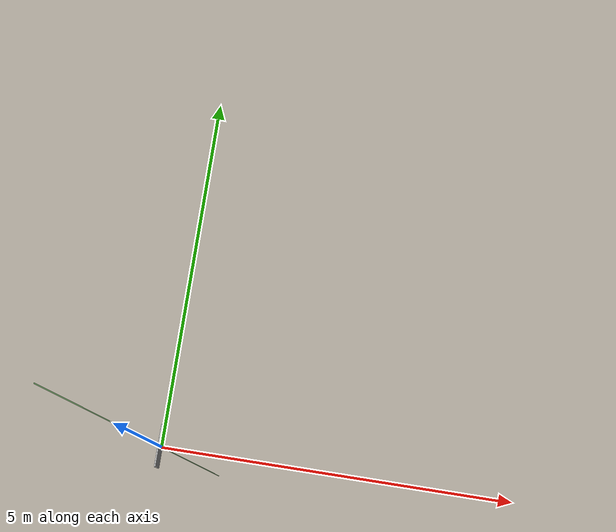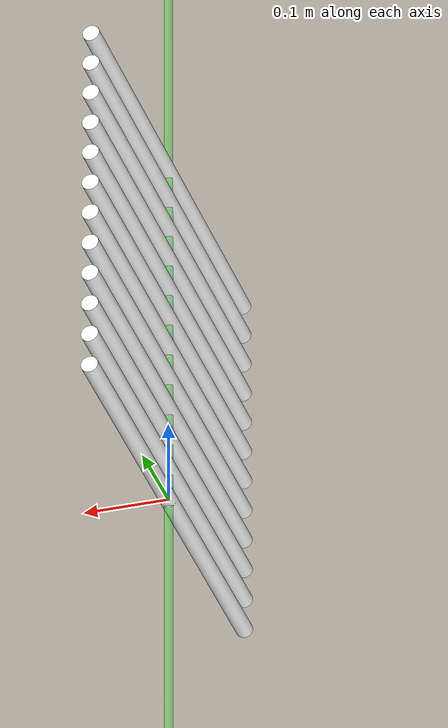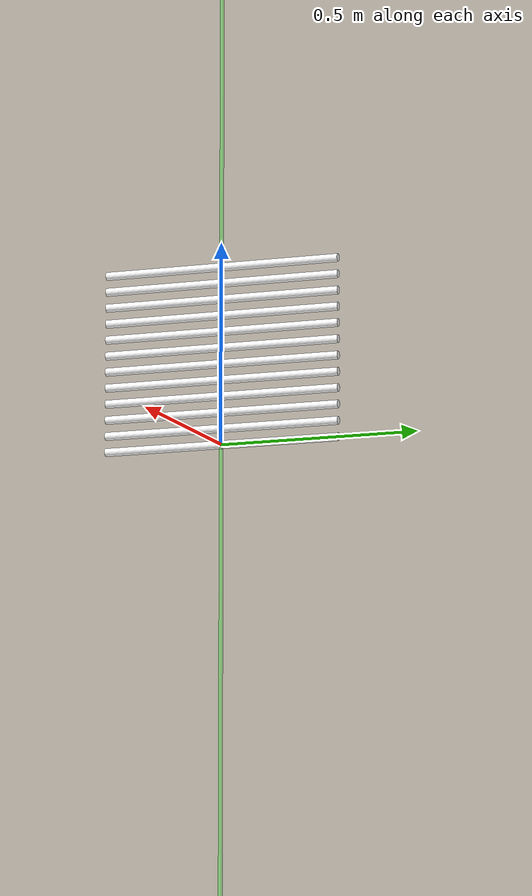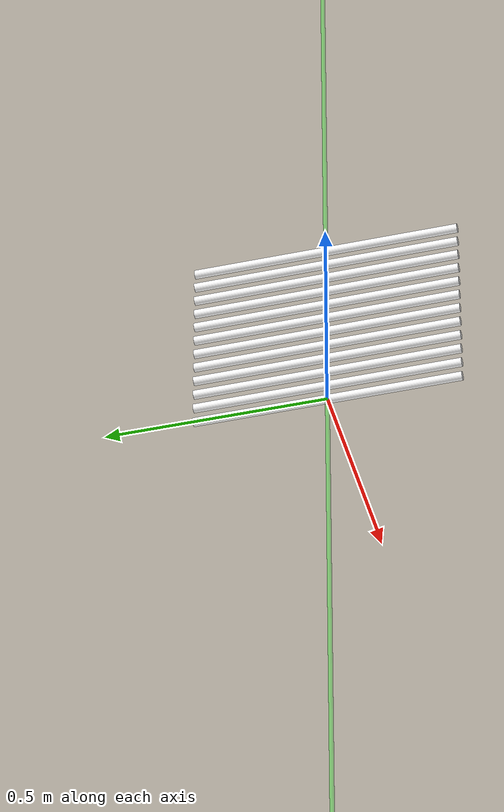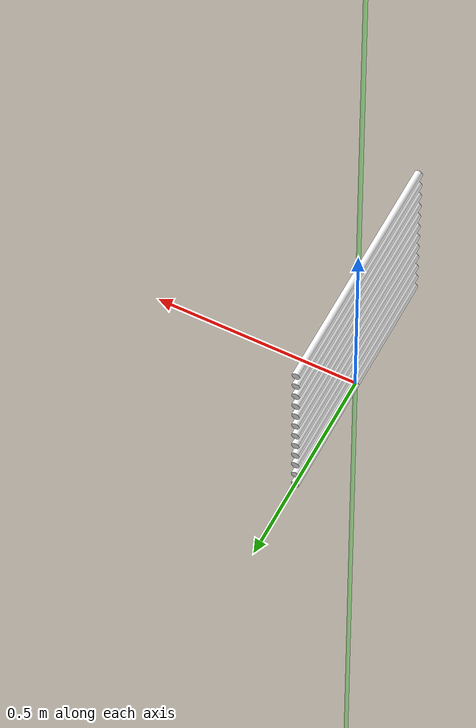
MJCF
<mujoco model="cloth_hand">
    <worldbody>
        <body name="cloth_base" pos="0 0 0">
            <site name="ft_frame" pos="0 0 0" size="0.01 0.01 0.01" rgba="1 0 0 1" type="sphere" group="1"/>
            <inertial pos="0 0 0" mass="3e-1" diaginertia="1e-2 1e-2 1e-2" />
            <body name="eef" pos="0 0 0" quat="0.707105 0 0 -0.707105">
                <site name="grip_site" pos="0 0 0" size="0.01 0.01 0.01" rgba="1 0 0 0.5" type="sphere" group="1"/>
                <site name="ee_x" pos="0.1 0 0" size="0.005 .1"  quat="0.707105  0 0.707108 0 " rgba="1 0 0 0" type="cylinder" group="1"/>
                <site name="ee_y" pos="0 0.1 0" size="0.005 .1" quat="0.707105 0.707108 0 0" rgba="0 1 0 0" type="cylinder" group="1"/>
                <site name="ee_z" pos="0 0 0.1" size="0.005 .1" quat="1 0 0 0" rgba="0 0 1 0" type="cylinder" group="1"/>
                <site name="grip_site_cylinder" pos="0 0 0" size="0.005 10" rgba="0 1 0 0.3" type="cylinder" group="1"/>
            </body>

        	<body name="object" quat="0.707 0.707 0 0">
        		<inertial pos="0.022 0 0" mass="0.01" diaginertia="7.89997e-07 7.89997e-07 8e-08" />
        		<geom size="0.01 0.3" pos="0 0 0" type="cylinder" rgba="1 1 1 1" group="0"/>
        		<joint name="joint0" type="hinge" pos="0 0.04 0" range="-45 45" axis="0 0 1"/>
		    	<body name="object3">
					<geom size="0.01 0.3" pos="0 0.04 0" type="cylinder" rgba="1 1 1 1" group="0"/>
					<joint name="joint1" type="hinge" pos="0 0.08 0" range="-45 45" axis="0 0 1"/>
					<body name="object4">
						<geom size="0.01 0.3" pos="0 0.08 0" type="cylinder" rgba="1 1 1 1" group="0"/>
						<joint name="joint2" type="hinge" pos="0 0.12 0" range="-45 45" axis="0 0 1"/>
						<body name="object5">
							<geom size="0.01 0.3" pos="0 0.12 0" type="cylinder" rgba="1 1 1 1" group="0"/>
							<joint name="joint3" type="hinge" pos="0 0.16 0" range="-45 45" axis="0 0 1"/>
							<body name="object6">
								<geom size="0.01 0.3" pos="0 0.16 0" type="cylinder" rgba="1 1 1 1" group="0"/>
								<joint name="joint4" type="hinge" pos="0 0.20 0" range="-45 45" axis="0 0 1"/>
								<body name="object7">
									<geom size="0.01 0.3" pos="0 0.20 0" type="cylinder" rgba="1 1 1 1" group="0"/>
									<joint name="joint5" type="hinge" pos="0 0.24 0" range="-45 45" axis="0 0 1"/>
									<body name="object8">
										<geom size="0.01 0.3" pos="0 0.24 0" type="cylinder" rgba="1 1 1 1" group="0"/>
										<joint name="joint6" type="hinge" pos="0 0.28 0" range="-45 45" axis="0 0 1"/>
										<body name="object9">
											<geom size="0.01 0.3" pos="0 0.28 0" type="cylinder" rgba="1 1 1 1" group="0"/>
											<joint name="joint7" type="hinge" pos="0 0.32 0" range="-45 45" axis="0 0 1"/>
											<body name="object10">
												<geom size="0.01 0.3" pos="0 0.32 0" type="cylinder" rgba="1 1 1 1" group="0"/>
												<joint name="joint8" type="hinge" pos="0 0.36 0" range="-45 45" axis="0 0 1"/>
												<body name="object11">
													<geom size="0.01 0.3" pos="0 0.36 0" type="cylinder" rgba="1 1 1 1" group="0"/>
													<joint name="joint9" type="hinge" pos="0 0.40 0" range="-45 45" axis="0 0 1"/>
													<body name="object12">
														<geom size="0.01 0.3" pos="0 0.40 0" type="cylinder" rgba="1 1 1 1" group="0"/>
														<joint name="joint10" type="hinge" pos="0 0.44 0" range="-45 45" axis="0 0 1"/>
														<geom size="0.01 0.3" pos="0 0.44 0" type="cylinder" rgba="1 1 1 1" group="0"/>
													</body>
												</body>
											</body>
										</body>
									</body>
								</body>
							</body>
						</body>
					</body>
				</body>
        	</body>
        </body>
    </worldbody>
    <sensor>
        <force name="force_ee" site="ft_frame"/>
        <torque name="torque_ee" site="ft_frame"/>
    </sensor>
</mujoco>
